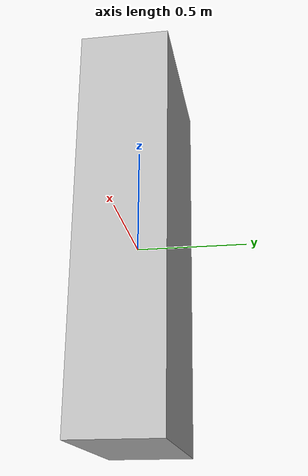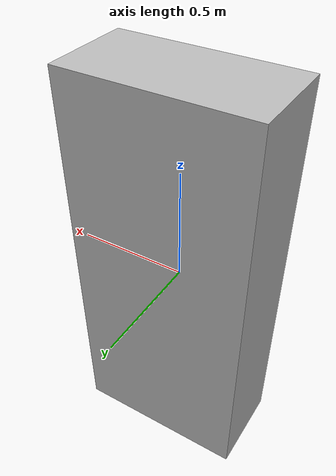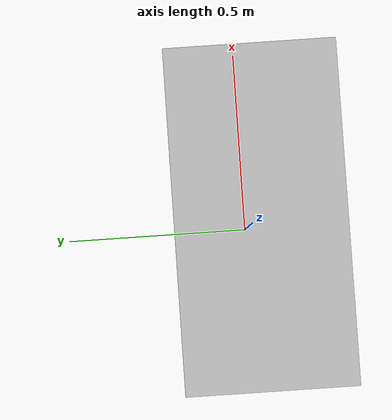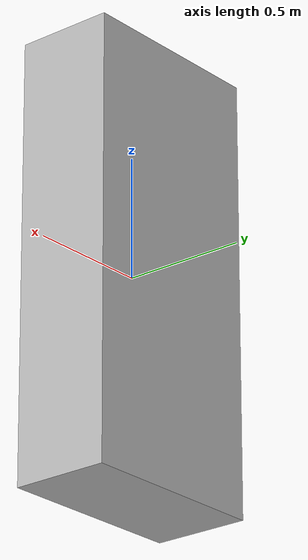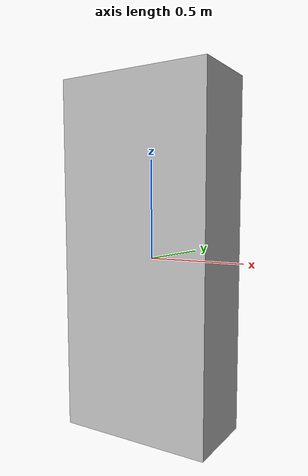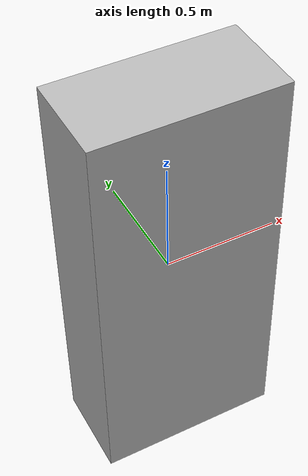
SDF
<?xml version="1.0"?>
<sdf version="1.7">
  <model name="test_crate">
    <static>true</static>
    <link name="link">
      <collision name="collision"><geometry><box><size>0.8 0.4 1.8</size></box></geometry></collision>
      <visual name="visual"><geometry><box><size>0.8 0.4 1.8</size></box></geometry></visual>
    </link>
  </model>
</sdf>
